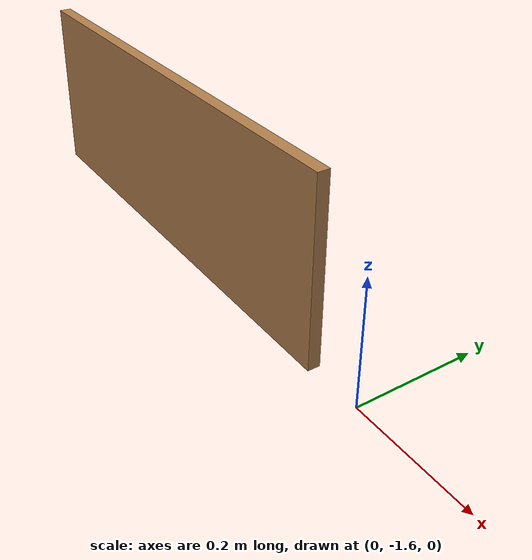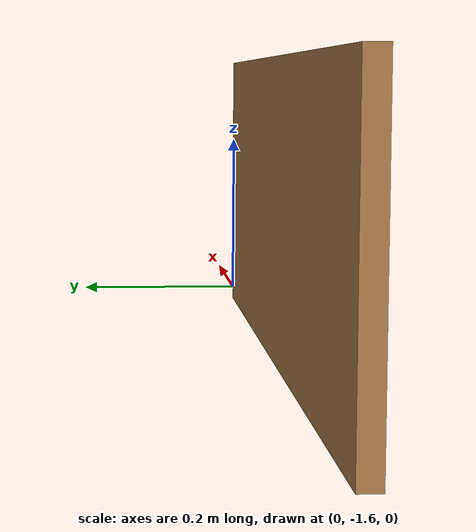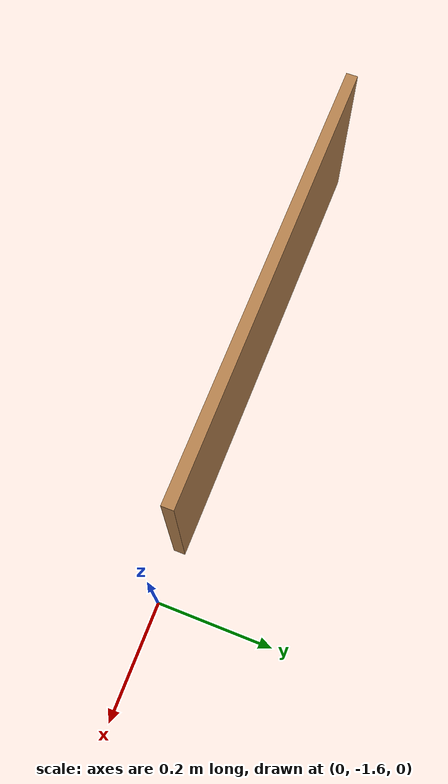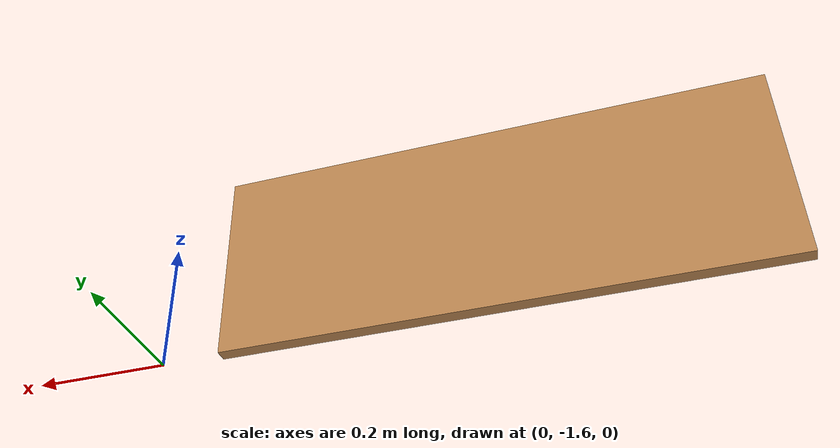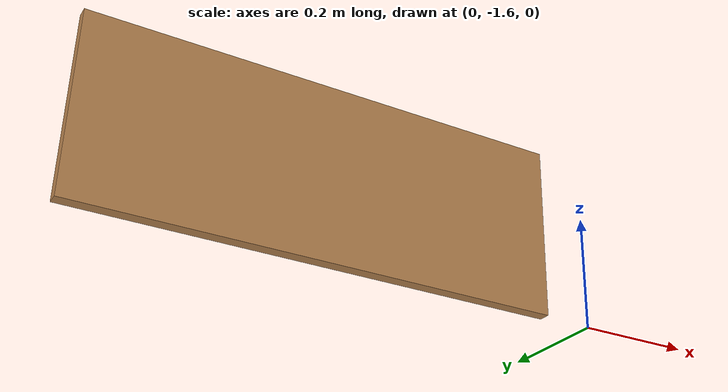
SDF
<?xml version='1.0'?>
<sdf version='1.7'>
  <model name='wall08m'>
    <pose>-0.445 -0.805 0 0 -0 0</pose>
    <link name='Wall_2'>
      <collision name='Wall_2_Collision'>
        <geometry>
          <box>
            <size>0.8 0.02 0.3</size>
          </box>
        </geometry>
        <pose>0 0 0.15 0 -0 0</pose>
      </collision>
      <visual name='Wall_2_Visual'>
        <pose>0 0 0.15 0 -0 0</pose>
        <geometry>
          <box>
            <size>0.8 0.02 0.3</size>
          </box>
        </geometry>
        <material>
          <script>
            <uri>file://media/materials/scripts/gazebo.material</uri>
            <name>Gazebo/Wood</name>
          </script>
          <ambient>1 1 1 1</ambient>
        </material>
        <meta>
          <layer>0</layer>
        </meta>
      </visual>
      <pose>-0.045 -0.795 0 0 -0 0</pose>
    </link>
    <static>1</static>
  </model>
</sdf>
